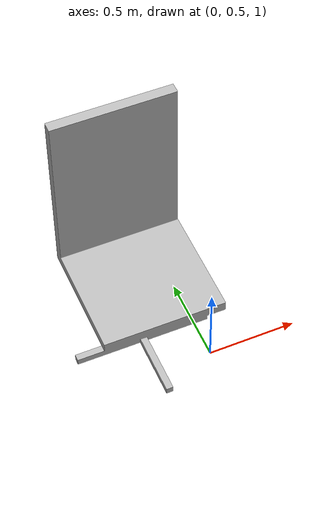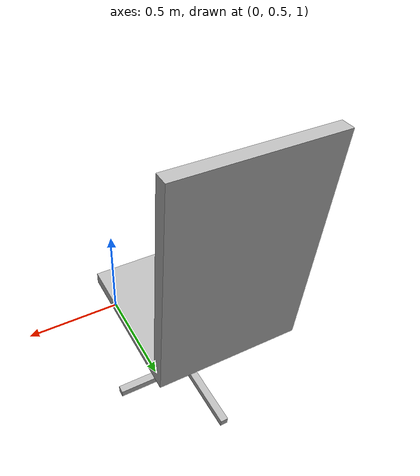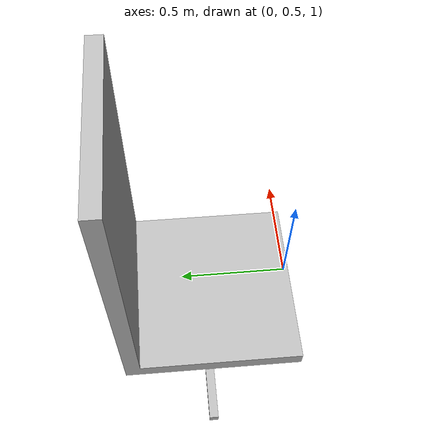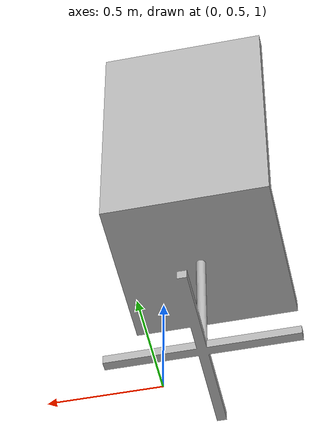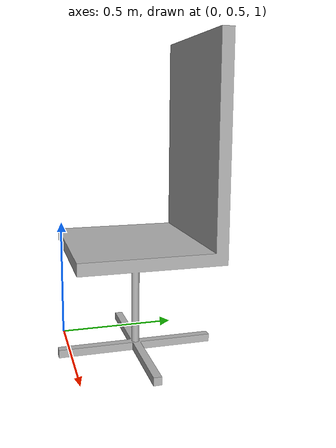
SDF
<sdf version="1.7">
  <model name="simple_chair">
    <static>true</static>
    <link name="link">
      <visual name="visual">
        <geometry>
          <mesh>
            <uri>meshes/meterchair.stl</uri>
          </mesh>
        </geometry>
      </visual>
      <collision name="collision">
        <geometry>
          <mesh>
            <uri>meshes/simpleroom.stl</uri>
          </mesh>
       </geometry>
      </collision>
    </link>
  </model>
</sdf>
